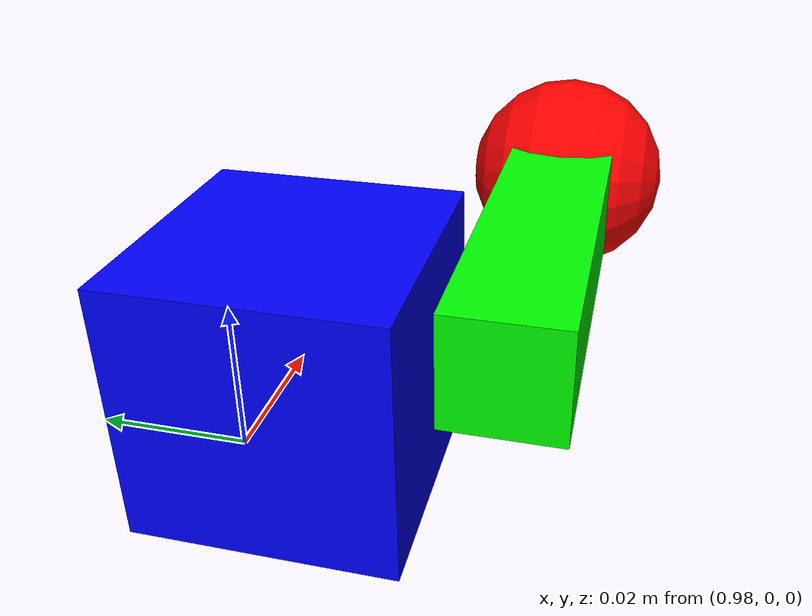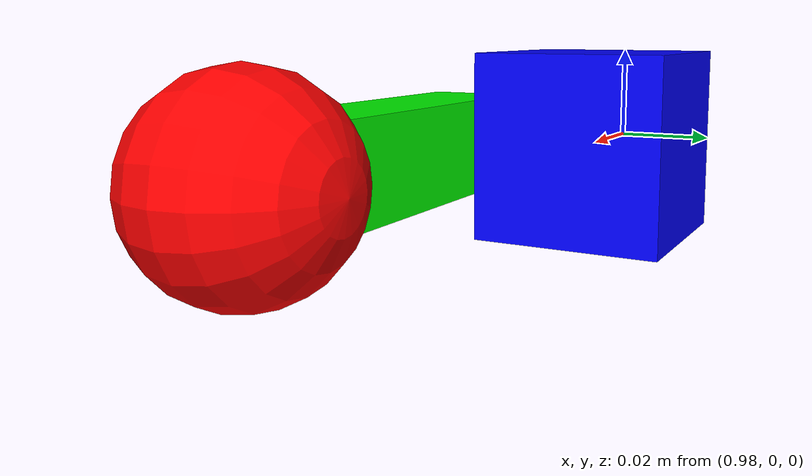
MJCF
<mujoco model="XR4Ginger_717">
    <compiler angle="degree" eulerseq="xyz" assetdir="../assets" meshdir="../assets" texturedir="../assets"/>
    <statistic extent="2" center="0 0 1"/>
    <option timestep="0.001" gravity="0 0 -9.81" iterations="50" tolerance="1e-10" solver="PGS" jacobian="dense" cone="pyramidal" />

    <visual>
        <global offwidth="800" offheight="800" />
        <map force="0.005" zfar="20" />
        <rgba haze="0.15 0.25 0.35 1" />
        <scale com="0.1" forcewidth="0.1" contactwidth="0.30" contactheight="0.1"/>
    </visual>

    <default>
        <joint limited="false" range="-180 180" solimplimit="0.95 0.99 0.01" stiffness="0.0" armature=".00001" damping="0.01"/>
        <motor ctrllimited="true" ctrlrange="-1000 1000"/>
        <geom condim="3" type="mesh" group="0" solref="0.001 1" solimp="0.99 0.999 0.003" />

        <default class="viz">
            <geom friction="0.7" type="mesh" rgba="0.8 0.8 0.8 1" contype="0" conaffinity="0" group="1" />
        </default>

        <default class="joint">
            <joint stiffness="0" damping="0.01" frictionloss="0.01"/>
        </default>
    </default>

    <worldbody>
        <light mode="targetbodycom" target="base" directional="true" diffuse=".8 .8 .8" specular="0.8 0.8 0.8" pos="0 0 4" dir="0 0 -1" />

        <body name="base" pos="1.0 0 0" euler="90 0 0">
            <geom class="viz" type="box" size="0.02 0.02 0.02" euler="0 0 0" rgba="0 0 1 1"/>
            <body name="pole" pos="0 0 0.03" euler=" 0 0 0 ">
                <joint name="motor" axis="0 0 1" class="joint"/>
                <geom class="viz" type="box" size="0.04 0.01 0.01" pos="0.04 0 0" euler="0 0 0" mass="0.001" rgba="0 1 0 1"/>
                <body name="load" pos="0.08 0 0" euler=" 0 0 0 ">
                    <geom class="viz" type="sphere" size="0.02" mass="10" rgba="1 0 0 1"/>
                </body>
            </body>
        </body>
    </worldbody>

    <actuator>
        <motor name="motor" joint="motor"/>
    </actuator>

    <sensor>
        <jointpos name="motor_pos" joint="motor"/>
        <jointvel name="motor_vel" joint="motor"/>
    </sensor>
</mujoco>
